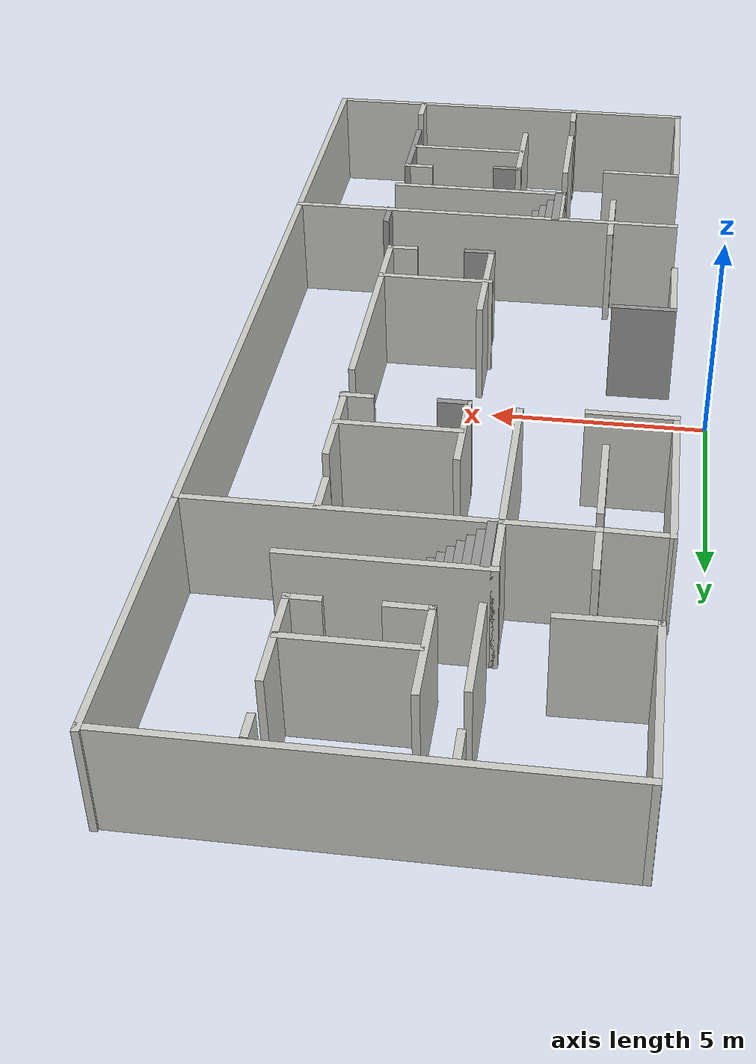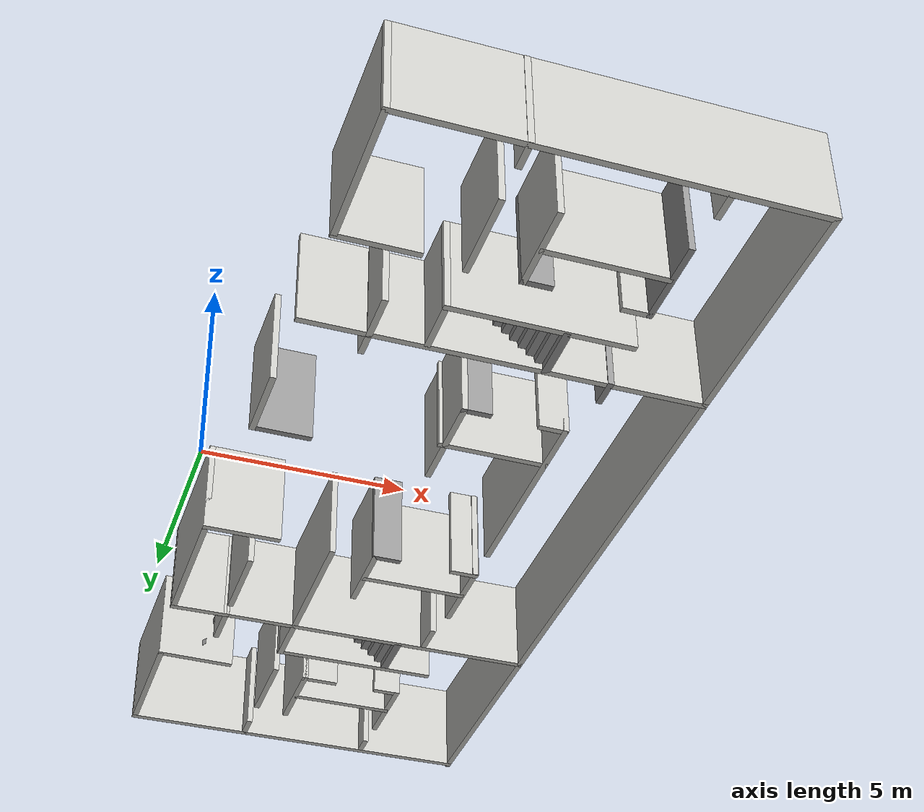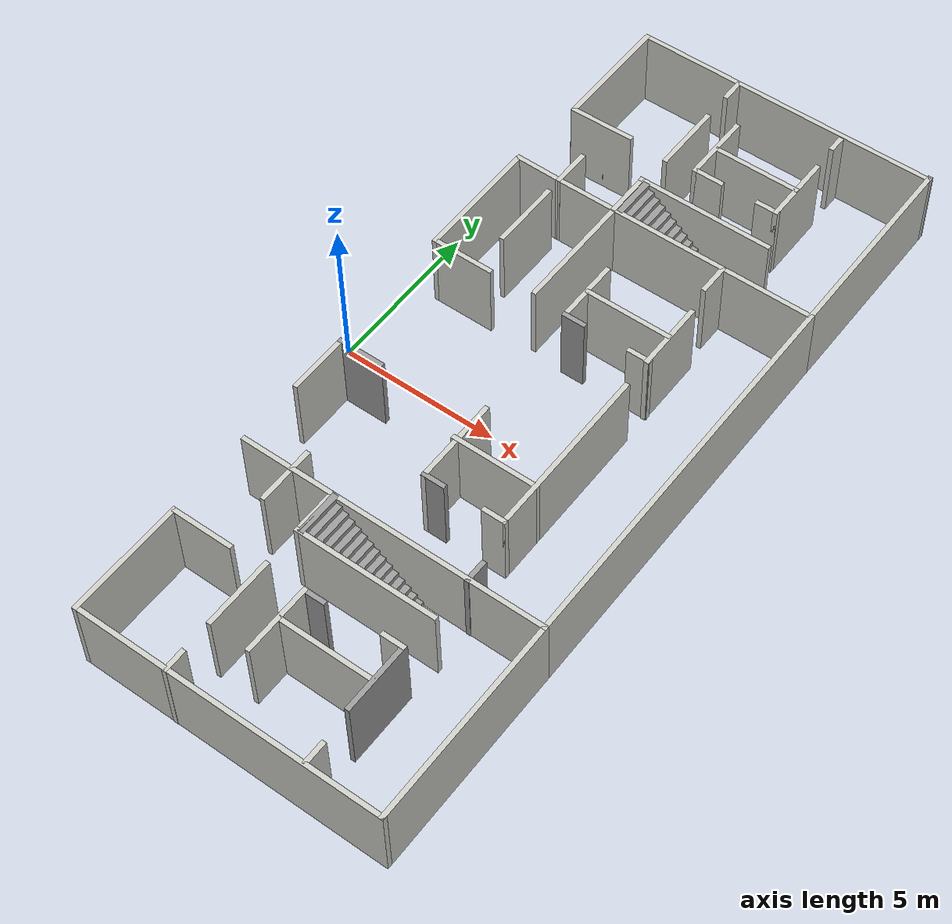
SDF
<?xml version='1.0'?>
<sdf version='1.6'>
  <model name='shelby_building_a'>
    <pose frame=''>5.3237 0.741996 0 0 -0 0</pose>
    <static>true</static>
    <link name='Stairs_0'>
      <visual name='Stairs_0_Visual_0'>
        <pose frame=''>1.71952 6.80943 0.083333 0 -0 -1.5708</pose>
        <geometry>
          <box>
            <size>1.3345 0.197035 0.166667</size>
          </box>
        </geometry>
        <material>
          <script>
            <uri>file://media/materials/scripts/gazebo.material</uri>
            <name>Gazebo/Grey</name>
          </script>
          <ambient>1 1 1 1</ambient>
        </material>
        <meta>
          <layer>0</layer>
        </meta>
      </visual>
      <collision name='Stairs_0_Collision_0'>
        <geometry>
          <box>
            <size>1.3345 0.197035 0.166667</size>
          </box>
        </geometry>
        <pose frame=''>1.71952 6.80943 0.083333 0 -0 -1.5708</pose>
      </collision>
      <visual name='Stairs_0_Visual_1'>
        <pose frame=''>1.52249 6.80943 0.25 0 -0 -1.5708</pose>
        <geometry>
          <box>
            <size>1.3345 0.197035 0.166667</size>
          </box>
        </geometry>
        <material>
          <script>
            <uri>file://media/materials/scripts/gazebo.material</uri>
            <name>Gazebo/Grey</name>
          </script>
          <ambient>1 1 1 1</ambient>
        </material>
        <meta>
          <layer>0</layer>
        </meta>
      </visual>
      <collision name='Stairs_0_Collision_1'>
        <geometry>
          <box>
            <size>1.3345 0.197035 0.166667</size>
          </box>
        </geometry>
        <pose frame=''>1.52249 6.80943 0.25 0 -0 -1.5708</pose>
      </collision>
      <visual name='Stairs_0_Visual_2'>
        <pose frame=''>1.32545 6.80943 0.416667 0 -0 -1.5708</pose>
        <geometry>
          <box>
            <size>1.3345 0.197035 0.166667</size>
          </box>
        </geometry>
        <material>
          <script>
            <uri>file://media/materials/scripts/gazebo.material</uri>
            <name>Gazebo/Grey</name>
          </script>
          <ambient>1 1 1 1</ambient>
        </material>
        <meta>
          <layer>0</layer>
        </meta>
      </visual>
      <collision name='Stairs_0_Collision_2'>
        <geometry>
          <box>
            <size>1.3345 0.197035 0.166667</size>
          </box>
        </geometry>
        <pose frame=''>1.32545 6.80943 0.416667 0 -0 -1.5708</pose>
      </collision>
      <visual name='Stairs_0_Visual_3'>
        <pose frame=''>1.12842 6.80943 0.583333 0 -0 -1.5708</pose>
        <geometry>
          <box>
            <size>1.3345 0.197035 0.166667</size>
          </box>
        </geometry>
        <material>
          <script>
            <uri>file://media/materials/scripts/gazebo.material</uri>
            <name>Gazebo/Grey</name>
          </script>
          <ambient>1 1 1 1</ambient>
        </material>
        <meta>
          <layer>0</layer>
        </meta>
      </visual>
      <collision name='Stairs_0_Collision_3'>
        <geometry>
          <box>
            <size>1.3345 0.197035 0.166667</size>
          </box>
        </geometry>
        <pose frame=''>1.12842 6.80943 0.583333 0 -0 -1.5708</pose>
      </collision>
      <visual name='Stairs_0_Visual_4'>
        <pose frame=''>0.931381 6.80943 0.75 0 -0 -1.5708</pose>
        <geometry>
          <box>
            <size>1.3345 0.197035 0.166667</size>
          </box>
        </geometry>
        <material>
          <script>
            <uri>file://media/materials/scripts/gazebo.material</uri>
            <name>Gazebo/Grey</name>
          </script>
          <ambient>1 1 1 1</ambient>
        </material>
        <meta>
          <layer>0</layer>
        </meta>
      </visual>
      <collision name='Stairs_0_Collision_4'>
        <geometry>
          <box>
            <size>1.3345 0.197035 0.166667</size>
          </box>
        </geometry>
        <pose frame=''>0.931381 6.80943 0.75 0 -0 -1.5708</pose>
      </collision>
      <visual name='Stairs_0_Visual_5'>
        <pose frame=''>0.734345 6.80943 0.916667 0 -0 -1.5708</pose>
        <geometry>
          <box>
            <size>1.3345 0.197035 0.166667</size>
          </box>
        </geometry>
        <material>
          <script>
            <uri>file://media/materials/scripts/gazebo.material</uri>
            <name>Gazebo/Grey</name>
          </script>
          <ambient>1 1 1 1</ambient>
        </material>
        <meta>
          <layer>0</layer>
        </meta>
      </visual>
      <collision name='Stairs_0_Collision_5'>
        <geometry>
          <box>
            <size>1.3345 0.197035 0.166667</size>
          </box>
        </geometry>
        <pose frame=''>0.734345 6.80943 0.916667 0 -0 -1.5708</pose>
      </collision>
      <visual name='Stairs_0_Visual_6'>
        <pose frame=''>0.53731 6.80943 1.08333 0 -0 -1.5708</pose>
        <geometry>
          <box>
            <size>1.3345 0.197035 0.166667</size>
          </box>
        </geometry>
        <material>
          <script>
            <uri>file://media/materials/scripts/gazebo.material</uri>
            <name>Gazebo/Grey</name>
          </script>
          <ambient>1 1 1 1</ambient>
        </material>
        <meta>
          <layer>0</layer>
        </meta>
      </visual>
      <collision name='Stairs_0_Collision_6'>
        <geometry>
          <box>
            <size>1.3345 0.197035 0.166667</size>
          </box>
        </geometry>
        <pose frame=''>0.53731 6.80943 1.08333 0 -0 -1.5708</pose>
      </collision>
      <visual name='Stairs_0_Visual_7'>
        <pose frame=''>0.340275 6.80943 1.25 0 -0 -1.5708</pose>
        <geometry>
          <box>
            <size>1.3345 0.197035 0.166667</size>
          </box>
        </geometry>
        <material>
          <script>
            <uri>file://media/materials/scripts/gazebo.material</uri>
            <name>Gazebo/Grey</name>
          </script>
          <ambient>1 1 1 1</ambient>
        </material>
        <meta>
          <layer>0</layer>
        </meta>
      </visual>
      <collision name='Stairs_0_Collision_7'>
        <geometry>
          <box>
            <size>1.3345 0.197035 0.166667</size>
          </box>
        </geometry>
        <pose frame=''>0.340275 6.80943 1.25 0 -0 -1.5708</pose>
      </collision>
      <visual name='Stairs_0_Visual_8'>
        <pose frame=''>0.143239 6.80943 1.41667 0 -0 -1.5708</pose>
        <geometry>
          <box>
            <size>1.3345 0.197035 0.166667</size>
          </box>
        </geometry>
        <material>
          <script>
            <uri>file://media/materials/scripts/gazebo.material</uri>
            <name>Gazebo/Grey</name>
          </script>
          <ambient>1 1 1 1</ambient>
        </material>
        <meta>
          <layer>0</layer>
        </meta>
      </visual>
      <collision name='Stairs_0_Collision_8'>
        <geometry>
          <box>
            <size>1.3345 0.197035 0.166667</size>
          </box>
        </geometry>
        <pose frame=''>0.143239 6.80943 1.41667 0 -0 -1.5708</pose>
      </collision>
      <visual name='Stairs_0_Visual_9'>
        <pose frame=''>-0.053796 6.80943 1.58333 0 -0 -1.5708</pose>
        <geometry>
          <box>
            <size>1.3345 0.197035 0.166667</size>
          </box>
        </geometry>
        <material>
          <script>
            <uri>file://media/materials/scripts/gazebo.material</uri>
            <name>Gazebo/Grey</name>
          </script>
          <ambient>1 1 1 1</ambient>
        </material>
        <meta>
          <layer>0</layer>
        </meta>
      </visual>
      <collision name='Stairs_0_Collision_9'>
        <geometry>
          <box>
            <size>1.3345 0.197035 0.166667</size>
          </box>
        </geometry>
        <pose frame=''>-0.053796 6.80943 1.58333 0 -0 -1.5708</pose>
      </collision>
      <visual name='Stairs_0_Visual_10'>
        <pose frame=''>-0.250831 6.80943 1.75 0 -0 -1.5708</pose>
        <geometry>
          <box>
            <size>1.3345 0.197035 0.166667</size>
          </box>
        </geometry>
        <material>
          <script>
            <uri>file://media/materials/scripts/gazebo.material</uri>
            <name>Gazebo/Grey</name>
          </script>
          <ambient>1 1 1 1</ambient>
        </material>
        <meta>
          <layer>0</layer>
        </meta>
      </visual>
      <collision name='Stairs_0_Collision_10'>
        <geometry>
          <box>
            <size>1.3345 0.197035 0.166667</size>
          </box>
        </geometry>
        <pose frame=''>-0.250831 6.80943 1.75 0 -0 -1.5708</pose>
      </collision>
      <visual name='Stairs_0_Visual_11'>
        <pose frame=''>-0.447867 6.80943 1.91667 0 -0 -1.5708</pose>
        <geometry>
          <box>
            <size>1.3345 0.197035 0.166667</size>
          </box>
        </geometry>
        <material>
          <script>
            <uri>file://media/materials/scripts/gazebo.material</uri>
            <name>Gazebo/Grey</name>
          </script>
          <ambient>1 1 1 1</ambient>
        </material>
        <meta>
          <layer>0</layer>
        </meta>
      </visual>
      <collision name='Stairs_0_Collision_11'>
        <geometry>
          <box>
            <size>1.3345 0.197035 0.166667</size>
          </box>
        </geometry>
        <pose frame=''>-0.447867 6.80943 1.91667 0 -0 -1.5708</pose>
      </collision>
      <visual name='Stairs_0_Visual_12'>
        <pose frame=''>-0.644902 6.80943 2.08333 0 -0 -1.5708</pose>
        <geometry>
          <box>
            <size>1.3345 0.197035 0.166667</size>
          </box>
        </geometry>
        <material>
          <script>
            <uri>file://media/materials/scripts/gazebo.material</uri>
            <name>Gazebo/Grey</name>
          </script>
          <ambient>1 1 1 1</ambient>
        </material>
        <meta>
          <layer>0</layer>
        </meta>
      </visual>
      <collision name='Stairs_0_Collision_12'>
        <geometry>
          <box>
            <size>1.3345 0.197035 0.166667</size>
          </box>
        </geometry>
        <pose frame=''>-0.644902 6.80943 2.08333 0 -0 -1.5708</pose>
      </collision>
      <visual name='Stairs_0_Visual_13'>
        <pose frame=''>-0.841938 6.80943 2.25 0 -0 -1.5708</pose>
        <geometry>
          <box>
            <size>1.3345 0.197035 0.166667</size>
          </box>
        </geometry>
        <material>
          <script>
            <uri>file://media/materials/scripts/gazebo.material</uri>
            <name>Gazebo/Grey</name>
          </script>
          <ambient>1 1 1 1</ambient>
        </material>
        <meta>
          <layer>0</layer>
        </meta>
      </visual>
      <collision name='Stairs_0_Collision_13'>
        <geometry>
          <box>
            <size>1.3345 0.197035 0.166667</size>
          </box>
        </geometry>
        <pose frame=''>-0.841938 6.80943 2.25 0 -0 -1.5708</pose>
      </collision>
      <visual name='Stairs_0_Visual_14'>
        <pose frame=''>-1.03897 6.80943 2.41667 0 -0 -1.5708</pose>
        <geometry>
          <box>
            <size>1.3345 0.197035 0.166667</size>
          </box>
        </geometry>
        <material>
          <script>
            <uri>file://media/materials/scripts/gazebo.material</uri>
            <name>Gazebo/Grey</name>
          </script>
          <ambient>1 1 1 1</ambient>
        </material>
        <meta>
          <layer>0</layer>
        </meta>
      </visual>
      <collision name='Stairs_0_Collision_14'>
        <geometry>
          <box>
            <size>1.3345 0.197035 0.166667</size>
          </box>
        </geometry>
        <pose frame=''>-1.03897 6.80943 2.41667 0 -0 -1.5708</pose>
      </collision>
    </link>
    <link name='Stairs_1'>
      <visual name='Stairs_1_Visual_0'>
        <pose frame=''>1.3518 -6.65038 0.083333 0 -0 -1.5708</pose>
        <geometry>
          <box>
            <size>1.42081 0.192156 0.166667</size>
          </box>
        </geometry>
        <material>
          <script>
            <uri>file://media/materials/scripts/gazebo.material</uri>
            <name>Gazebo/Grey</name>
          </script>
          <ambient>1 1 1 1</ambient>
        </material>
        <meta>
          <layer>0</layer>
        </meta>
      </visual>
      <collision name='Stairs_1_Collision_0'>
        <geometry>
          <box>
            <size>1.42081 0.192156 0.166667</size>
          </box>
        </geometry>
        <pose frame=''>1.3518 -6.65038 0.083333 0 -0 -1.5708</pose>
      </collision>
      <visual name='Stairs_1_Visual_1'>
        <pose frame=''>1.15964 -6.65038 0.25 0 -0 -1.5708</pose>
        <geometry>
          <box>
            <size>1.42081 0.192156 0.166667</size>
          </box>
        </geometry>
        <material>
          <script>
            <uri>file://media/materials/scripts/gazebo.material</uri>
            <name>Gazebo/Grey</name>
          </script>
          <ambient>1 1 1 1</ambient>
        </material>
        <meta>
          <layer>0</layer>
        </meta>
      </visual>
      <collision name='Stairs_1_Collision_1'>
        <geometry>
          <box>
            <size>1.42081 0.192156 0.166667</size>
          </box>
        </geometry>
        <pose frame=''>1.15964 -6.65038 0.25 0 -0 -1.5708</pose>
      </collision>
      <visual name='Stairs_1_Visual_2'>
        <pose frame=''>0.967485 -6.65038 0.416667 0 -0 -1.5708</pose>
        <geometry>
          <box>
            <size>1.42081 0.192156 0.166667</size>
          </box>
        </geometry>
        <material>
          <script>
            <uri>file://media/materials/scripts/gazebo.material</uri>
            <name>Gazebo/Grey</name>
          </script>
          <ambient>1 1 1 1</ambient>
        </material>
        <meta>
          <layer>0</layer>
        </meta>
      </visual>
      <collision name='Stairs_1_Collision_2'>
        <geometry>
          <box>
            <size>1.42081 0.192156 0.166667</size>
          </box>
        </geometry>
        <pose frame=''>0.967485 -6.65038 0.416667 0 -0 -1.5708</pose>
      </collision>
      <visual name='Stairs_1_Visual_3'>
        <pose frame=''>0.775329 -6.65038 0.583333 0 -0 -1.5708</pose>
        <geometry>
          <box>
            <size>1.42081 0.192156 0.166667</size>
          </box>
        </geometry>
        <material>
          <script>
            <uri>file://media/materials/scripts/gazebo.material</uri>
            <name>Gazebo/Grey</name>
          </script>
          <ambient>1 1 1 1</ambient>
        </material>
        <meta>
          <layer>0</layer>
        </meta>
      </visual>
      <collision name='Stairs_1_Collision_3'>
        <geometry>
          <box>
            <size>1.42081 0.192156 0.166667</size>
          </box>
        </geometry>
        <pose frame=''>0.775329 -6.65038 0.583333 0 -0 -1.5708</pose>
      </collision>
      <visual name='Stairs_1_Visual_4'>
        <pose frame=''>0.583173 -6.65038 0.75 0 -0 -1.5708</pose>
        <geometry>
          <box>
            <size>1.42081 0.192156 0.166667</size>
          </box>
        </geometry>
        <material>
          <script>
            <uri>file://media/materials/scripts/gazebo.material</uri>
            <name>Gazebo/Grey</name>
          </script>
          <ambient>1 1 1 1</ambient>
        </material>
        <meta>
          <layer>0</layer>
        </meta>
      </visual>
      <collision name='Stairs_1_Collision_4'>
        <geometry>
          <box>
            <size>1.42081 0.192156 0.166667</size>
          </box>
        </geometry>
        <pose frame=''>0.583173 -6.65038 0.75 0 -0 -1.5708</pose>
      </collision>
      <visual name='Stairs_1_Visual_5'>
        <pose frame=''>0.391017 -6.65038 0.916667 0 -0 -1.5708</pose>
        <geometry>
          <box>
            <size>1.42081 0.192156 0.166667</size>
          </box>
        </geometry>
        <material>
          <script>
            <uri>file://media/materials/scripts/gazebo.material</uri>
            <name>Gazebo/Grey</name>
          </script>
          <ambient>1 1 1 1</ambient>
        </material>
        <meta>
          <layer>0</layer>
        </meta>
      </visual>
      <collision name='Stairs_1_Collision_5'>
        <geometry>
          <box>
            <size>1.42081 0.192156 0.166667</size>
          </box>
        </geometry>
        <pose frame=''>0.391017 -6.65038 0.916667 0 -0 -1.5708</pose>
      </collision>
      <visual name='Stairs_1_Visual_6'>
        <pose frame=''>0.198861 -6.65038 1.08333 0 -0 -1.5708</pose>
        <geometry>
          <box>
            <size>1.42081 0.192156 0.166667</size>
          </box>
        </geometry>
        <material>
          <script>
            <uri>file://media/materials/scripts/gazebo.material</uri>
            <name>Gazebo/Grey</name>
          </script>
          <ambient>1 1 1 1</ambient>
        </material>
        <meta>
          <layer>0</layer>
        </meta>
      </visual>
      <collision name='Stairs_1_Collision_6'>
        <geometry>
          <box>
            <size>1.42081 0.192156 0.166667</size>
          </box>
        </geometry>
        <pose frame=''>0.198861 -6.65038 1.08333 0 -0 -1.5708</pose>
      </collision>
      <visual name='Stairs_1_Visual_7'>
        <pose frame=''>0.006705 -6.65038 1.25 0 -0 -1.5708</pose>
        <geometry>
          <box>
            <size>1.42081 0.192156 0.166667</size>
          </box>
        </geometry>
        <material>
          <script>
            <uri>file://media/materials/scripts/gazebo.material</uri>
            <name>Gazebo/Grey</name>
          </script>
          <ambient>1 1 1 1</ambient>
        </material>
        <meta>
          <layer>0</layer>
        </meta>
      </visual>
      <collision name='Stairs_1_Collision_7'>
        <geometry>
          <box>
            <size>1.42081 0.192156 0.166667</size>
          </box>
        </geometry>
        <pose frame=''>0.006705 -6.65038 1.25 0 -0 -1.5708</pose>
      </collision>
      <visual name='Stairs_1_Visual_8'>
        <pose frame=''>-0.185451 -6.65038 1.41667 0 -0 -1.5708</pose>
        <geometry>
          <box>
            <size>1.42081 0.192156 0.166667</size>
          </box>
        </geometry>
        <material>
          <script>
            <uri>file://media/materials/scripts/gazebo.material</uri>
            <name>Gazebo/Grey</name>
          </script>
          <ambient>1 1 1 1</ambient>
        </material>
        <meta>
          <layer>0</layer>
        </meta>
      </visual>
      <collision name='Stairs_1_Collision_8'>
        <geometry>
          <box>
            <size>1.42081 0.192156 0.166667</size>
          </box>
        </geometry>
        <pose frame=''>-0.185451 -6.65038 1.41667 0 -0 -1.5708</pose>
      </collision>
      <visual name='Stairs_1_Visual_9'>
        <pose frame=''>-0.377606 -6.65038 1.58333 0 -0 -1.5708</pose>
        <geometry>
          <box>
            <size>1.42081 0.192156 0.166667</size>
          </box>
        </geometry>
        <material>
          <script>
            <uri>file://media/materials/scripts/gazebo.material</uri>
            <name>Gazebo/Grey</name>
          </script>
          <ambient>1 1 1 1</ambient>
        </material>
        <meta>
          <layer>0</layer>
        </meta>
      </visual>
      <collision name='Stairs_1_Collision_9'>
        <geometry>
          <box>
            <size>1.42081 0.192156 0.166667</size>
          </box>
        </geometry>
        <pose frame=''>-0.377606 -6.65038 1.58333 0 -0 -1.5708</pose>
      </collision>
      <visual name='Stairs_1_Visual_10'>
        <pose frame=''>-0.569762 -6.65038 1.75 0 -0 -1.5708</pose>
        <geometry>
          <box>
            <size>1.42081 0.192156 0.166667</size>
          </box>
        </geometry>
        <material>
          <script>
            <uri>file://media/materials/scripts/gazebo.material</uri>
            <name>Gazebo/Grey</name>
          </script>
          <ambient>1 1 1 1</ambient>
        </material>
        <meta>
          <layer>0</layer>
        </meta>
      </visual>
      <collision name='Stairs_1_Collision_10'>
        <geometry>
          <box>
            <size>1.42081 0.192156 0.166667</size>
          </box>
        </geometry>
        <pose frame=''>-0.569762 -6.65038 1.75 0 -0 -1.5708</pose>
      </collision>
      <visual name='Stairs_1_Visual_11'>
        <pose frame=''>-0.761919 -6.65038 1.91667 0 -0 -1.5708</pose>
        <geometry>
          <box>
            <size>1.42081 0.192156 0.166667</size>
          </box>
        </geometry>
        <material>
          <script>
            <uri>file://media/materials/scripts/gazebo.material</uri>
            <name>Gazebo/Grey</name>
          </script>
          <ambient>1 1 1 1</ambient>
        </material>
        <meta>
          <layer>0</layer>
        </meta>
      </visual>
      <collision name='Stairs_1_Collision_11'>
        <geometry>
          <box>
            <size>1.42081 0.192156 0.166667</size>
          </box>
        </geometry>
        <pose frame=''>-0.761919 -6.65038 1.91667 0 -0 -1.5708</pose>
      </collision>
      <visual name='Stairs_1_Visual_12'>
        <pose frame=''>-0.954074 -6.65038 2.08333 0 -0 -1.5708</pose>
        <geometry>
          <box>
            <size>1.42081 0.192156 0.166667</size>
          </box>
        </geometry>
        <material>
          <script>
            <uri>file://media/materials/scripts/gazebo.material</uri>
            <name>Gazebo/Grey</name>
          </script>
          <ambient>1 1 1 1</ambient>
        </material>
        <meta>
          <layer>0</layer>
        </meta>
      </visual>
      <collision name='Stairs_1_Collision_12'>
        <geometry>
          <box>
            <size>1.42081 0.192156 0.166667</size>
          </box>
        </geometry>
        <pose frame=''>-0.954074 -6.65038 2.08333 0 -0 -1.5708</pose>
      </collision>
      <visual name='Stairs_1_Visual_13'>
        <pose frame=''>-1.14623 -6.65038 2.25 0 -0 -1.5708</pose>
        <geometry>
          <box>
            <size>1.42081 0.192156 0.166667</size>
          </box>
        </geometry>
        <material>
          <script>
            <uri>file://media/materials/scripts/gazebo.material</uri>
            <name>Gazebo/Grey</name>
          </script>
          <ambient>1 1 1 1</ambient>
        </material>
        <meta>
          <layer>0</layer>
        </meta>
      </visual>
      <collision name='Stairs_1_Collision_13'>
        <geometry>
          <box>
            <size>1.42081 0.192156 0.166667</size>
          </box>
        </geometry>
        <pose frame=''>-1.14623 -6.65038 2.25 0 -0 -1.5708</pose>
      </collision>
      <visual name='Stairs_1_Visual_14'>
        <pose frame=''>-1.33839 -6.65038 2.41667 0 -0 -1.5708</pose>
        <geometry>
          <box>
            <size>1.42081 0.192156 0.166667</size>
          </box>
        </geometry>
        <material>
          <script>
            <uri>file://media/materials/scripts/gazebo.material</uri>
            <name>Gazebo/Grey</name>
          </script>
          <ambient>1 1 1 1</ambient>
        </material>
        <meta>
          <layer>0</layer>
        </meta>
      </visual>
      <collision name='Stairs_1_Collision_14'>
        <geometry>
          <box>
            <size>1.42081 0.192156 0.166667</size>
          </box>
        </geometry>
        <pose frame=''>-1.33839 -6.65038 2.41667 0 -0 -1.5708</pose>
      </collision>
    </link>
    <link name='Wall_0'>
      <collision name='Wall_0_Collision'>
        <geometry>
          <box>
            <size>1.25 0.15 2.5</size>
          </box>
        </geometry>
        <pose frame=''>0 0 1.25 0 -0 0</pose>
      </collision>
      <visual name='Wall_0_Visual'>
        <pose frame=''>0 0 1.25 0 -0 0</pose>
        <geometry>
          <box>
            <size>1.25 0.15 2.5</size>
          </box>
        </geometry>
        <material>
          <script>
            <uri>file://media/materials/scripts/gazebo.material</uri>
            <name>Gazebo/CeilingTiled</name>
          </script>
          <ambient>1 1 1 1</ambient>
        </material>
        <meta>
          <layer>0</layer>
        </meta>
      </visual>
      <pose frame=''>-3.1013 6.6757 0 0 -0 1.5708</pose>
    </link>
    <link name='Wall_100'>
      <collision name='Wall_100_Collision'>
        <geometry>
          <box>
            <size>0.75 0.15 2.5</size>
          </box>
        </geometry>
        <pose frame=''>0 0 1.25 0 -0 0</pose>
      </collision>
      <visual name='Wall_100_Visual'>
        <pose frame=''>0 0 1.25 0 -0 0</pose>
        <geometry>
          <box>
            <size>0.75 0.15 2.5</size>
          </box>
        </geometry>
        <material>
          <script>
            <uri>file://media/materials/scripts/gazebo.material</uri>
            <name>Gazebo/CeilingTiled</name>
          </script>
          <ambient>1 1 1 1</ambient>
        </material>
        <meta>
          <layer>0</layer>
        </meta>
      </visual>
      <pose frame=''>2.51244 -8.45493 0 0 -0 3.14159</pose>
    </link>
    <link name='Wall_102'>
      <collision name='Wall_102_Collision'>
        <geometry>
          <box>
            <size>0.75 0.15 2.5</size>
          </box>
        </geometry>
        <pose frame=''>0 0 1.25 0 -0 0</pose>
      </collision>
      <visual name='Wall_102_Visual'>
        <pose frame=''>0 0 1.25 0 -0 0</pose>
        <geometry>
          <box>
            <size>0.75 0.15 2.5</size>
          </box>
        </geometry>
        <material>
          <script>
            <uri>file://media/materials/scripts/gazebo.material</uri>
            <name>Gazebo/CeilingTiled</name>
          </script>
          <ambient>1 1 1 1</ambient>
        </material>
        <meta>
          <layer>0</layer>
        </meta>
      </visual>
      <pose frame=''>2.91712 -11.9645 0 0 -0 1.5708</pose>
    </link>
    <link name='Wall_11'>
      <collision name='Wall_11_Collision'>
        <geometry>
          <box>
            <size>2.25 0.15 2.5</size>
          </box>
        </geometry>
        <pose frame=''>0 0 1.25 0 -0 0</pose>
      </collision>
      <visual name='Wall_11_Visual'>
        <pose frame=''>0 0 1.25 0 -0 0</pose>
        <geometry>
          <box>
            <size>2.25 0.15 2.5</size>
          </box>
        </geometry>
        <material>
          <script>
            <uri>file://media/materials/scripts/gazebo.material</uri>
            <name>Gazebo/CeilingTiled</name>
          </script>
          <ambient>1 1 1 1</ambient>
        </material>
        <meta>
          <layer>0</layer>
        </meta>
      </visual>
      <pose frame=''>-3.09191 4.52799 0 0 -0 -1.5708</pose>
    </link>
    <link name='Wall_17'>
      <collision name='Wall_17_Collision'>
        <geometry>
          <box>
            <size>2.25 0.15 2.5</size>
          </box>
        </geometry>
        <pose frame=''>0 0 1.25 0 -0 0</pose>
      </collision>
      <visual name='Wall_17_Visual'>
        <pose frame=''>0 0 1.25 0 -0 0</pose>
        <geometry>
          <box>
            <size>2.25 0.15 2.5</size>
          </box>
        </geometry>
        <material>
          <script>
            <uri>file://media/materials/scripts/gazebo.material</uri>
            <name>Gazebo/CeilingTiled</name>
          </script>
          <ambient>1 1 1 1</ambient>
        </material>
        <meta>
          <layer>0</layer>
        </meta>
      </visual>
      <pose frame=''>2.47616 9.76328 0 0 -0 -1.5708</pose>
    </link>
    <link name='Wall_18'>
      <collision name='Wall_18_Collision'>
        <geometry>
          <box>
            <size>0.75 0.15 2.5</size>
          </box>
        </geometry>
        <pose frame=''>0 0 1.25 0 -0 0</pose>
      </collision>
      <visual name='Wall_18_Visual'>
        <pose frame=''>0 0 1.25 0 -0 0</pose>
        <geometry>
          <box>
            <size>0.75 0.15 2.5</size>
          </box>
        </geometry>
        <material>
          <script>
            <uri>file://media/materials/scripts/gazebo.material</uri>
            <name>Gazebo/CeilingTiled</name>
          </script>
          <ambient>1 1 1 1</ambient>
        </material>
        <meta>
          <layer>0</layer>
        </meta>
      </visual>
      <pose frame=''>2.17616 8.71328 0 0 -0 3.14159</pose>
    </link>
    <link name='Wall_2'>
      <collision name='Wall_2_Collision'>
        <geometry>
          <box>
            <size>1.57014 0.15 2.5</size>
          </box>
        </geometry>
        <pose frame=''>0 0 1.25 0 -0 0</pose>
      </collision>
      <visual name='Wall_2_Visual'>
        <pose frame=''>0 0 1.25 0 -0 0</pose>
        <geometry>
          <box>
            <size>1.57014 0.15 2.5</size>
          </box>
        </geometry>
        <material>
          <script>
            <uri>file://media/materials/scripts/gazebo.material</uri>
            <name>Gazebo/CeilingTiled</name>
          </script>
          <ambient>1 1 1 1</ambient>
        </material>
        <meta>
          <layer>0</layer>
        </meta>
      </visual>
      <pose frame=''>-3.8113 6.1357 0 0 -0 -0.014084</pose>
    </link>
    <link name='Wall_20'>
      <collision name='Wall_20_Collision'>
        <geometry>
          <box>
            <size>2.75 0.15 2.5</size>
          </box>
        </geometry>
        <pose frame=''>0 0 1.25 0 -0 0</pose>
      </collision>
      <visual name='Wall_20_Visual'>
        <pose frame=''>0 0 1.25 0 -0 0</pose>
        <geometry>
          <box>
            <size>2.75 0.15 2.5</size>
          </box>
        </geometry>
        <material>
          <script>
            <uri>file://media/materials/scripts/gazebo.material</uri>
            <name>Gazebo/CeilingTiled</name>
          </script>
          <ambient>1 1 1 1</ambient>
        </material>
        <meta>
          <layer>0</layer>
        </meta>
      </visual>
      <pose frame=''>1.15007 9.73502 0 0 -0 0</pose>
    </link>
    <link name='Wall_22'>
      <collision name='Wall_22_Collision'>
        <geometry>
          <box>
            <size>0.75 0.15 2.5</size>
          </box>
        </geometry>
        <pose frame=''>0 0 1.25 0 -0 0</pose>
      </collision>
      <visual name='Wall_22_Visual'>
        <pose frame=''>0 0 1.25 0 -0 0</pose>
        <geometry>
          <box>
            <size>0.75 0.15 2.5</size>
          </box>
        </geometry>
        <material>
          <script>
            <uri>file://media/materials/scripts/gazebo.material</uri>
            <name>Gazebo/CeilingTiled</name>
          </script>
          <ambient>1 1 1 1</ambient>
        </material>
        <meta>
          <layer>0</layer>
        </meta>
      </visual>
      <pose frame=''>-1.10645 11.922 0 0 -0 -1.5708</pose>
    </link>
    <link name='Wall_24'>
      <collision name='Wall_24_Collision'>
        <geometry>
          <box>
            <size>0.55 0.15 2.5</size>
          </box>
        </geometry>
        <pose frame=''>0 0 1.25 0 -0 0</pose>
      </collision>
      <visual name='Wall_24_Visual'>
        <pose frame=''>0 0 1.25 0 -0 0</pose>
        <geometry>
          <box>
            <size>0.55 0.15 2.5</size>
          </box>
        </geometry>
        <material>
          <script>
            <uri>file://media/materials/scripts/gazebo.material</uri>
            <name>Gazebo/CeilingTiled</name>
          </script>
          <ambient>1 1 1 1</ambient>
        </material>
        <meta>
          <layer>0</layer>
        </meta>
      </visual>
      <pose frame=''>2.44137 11.9046 0 0 -0 -1.5708</pose>
    </link>
    <link name='Wall_27'>
      <collision name='Wall_27_Collision'>
        <geometry>
          <box>
            <size>4.36087 0.15 2.5</size>
          </box>
        </geometry>
        <pose frame=''>0 0 1.25 0 -0 0</pose>
      </collision>
      <visual name='Wall_27_Visual'>
        <pose frame=''>0 0 1.25 0 -0 0</pose>
        <geometry>
          <box>
            <size>4.36087 0.15 2.5</size>
          </box>
        </geometry>
        <material>
          <script>
            <uri>file://media/materials/scripts/gazebo.material</uri>
            <name>Gazebo/CeilingTiled</name>
          </script>
          <ambient>1 1 1 1</ambient>
        </material>
        <meta>
          <layer>0</layer>
        </meta>
      </visual>
      <pose frame=''>0.859853 7.50893 0 0 -0 0</pose>
    </link>
    <link name='Wall_29'>
      <collision name='Wall_29_Collision'>
        <geometry>
          <box>
            <size>4 0.15 2.5</size>
          </box>
        </geometry>
        <pose frame=''>0 0 1.25 0 -0 0</pose>
      </collision>
      <visual name='Wall_29_Visual'>
        <pose frame=''>0 0 1.25 0 -0 0</pose>
        <geometry>
          <box>
            <size>4 0.15 2.5</size>
          </box>
        </geometry>
        <material>
          <script>
            <uri>file://media/materials/scripts/gazebo.material</uri>
            <name>Gazebo/CeilingTiled</name>
          </script>
          <ambient>1 1 1 1</ambient>
        </material>
        <meta>
          <layer>0</layer>
        </meta>
      </visual>
      <pose frame=''>-4.5213 4.22071 0 0 -0 -1.5708</pose>
    </link>
    <link name='Wall_3'>
      <collision name='Wall_3_Collision'>
        <geometry>
          <box>
            <size>8.5 0.15 2.5</size>
          </box>
        </geometry>
        <pose frame=''>0 0 1.25 0 -0 0</pose>
      </collision>
      <visual name='Wall_3_Visual'>
        <pose frame=''>0 0 1.25 0 -0 0</pose>
        <geometry>
          <box>
            <size>8.5 0.15 2.5</size>
          </box>
        </geometry>
        <material>
          <script>
            <uri>file://media/materials/scripts/gazebo.material</uri>
            <name>Gazebo/CeilingTiled</name>
          </script>
          <ambient>1 1 1 1</ambient>
        </material>
        <meta>
          <layer>0</layer>
        </meta>
      </visual>
      <pose frame=''>1.0737 6.12571 0 0 -0 0</pose>
    </link>
    <link name='Wall_30'>
      <collision name='Wall_30_Collision'>
        <geometry>
          <box>
            <size>2 0.15 2.5</size>
          </box>
        </geometry>
        <pose frame=''>0 0 1.25 0 -0 0</pose>
      </collision>
      <visual name='Wall_30_Visual'>
        <pose frame=''>0 0 1.25 0 -0 0</pose>
        <geometry>
          <box>
            <size>2 0.15 2.5</size>
          </box>
        </geometry>
        <material>
          <script>
            <uri>file://media/materials/scripts/gazebo.material</uri>
            <name>Gazebo/CeilingTiled</name>
          </script>
          <ambient>1 1 1 1</ambient>
        </material>
        <meta>
          <layer>0</layer>
        </meta>
      </visual>
      <pose frame=''>-3.5963 2.29571 0 0 -0 0</pose>
    </link>
    <link name='Wall_32'>
      <collision name='Wall_32_Collision'>
        <geometry>
          <box>
            <size>3.75 0.15 2.5</size>
          </box>
        </geometry>
        <pose frame=''>0 0 1.25 0 -0 0</pose>
      </collision>
      <visual name='Wall_32_Visual'>
        <pose frame=''>0 0 1.25 0 -0 0</pose>
        <geometry>
          <box>
            <size>3.75 0.15 2.5</size>
          </box>
        </geometry>
        <material>
          <script>
            <uri>file://media/materials/scripts/gazebo.material</uri>
            <name>Gazebo/CeilingTiled</name>
          </script>
          <ambient>1 1 1 1</ambient>
        </material>
        <meta>
          <layer>0</layer>
        </meta>
      </visual>
      <pose frame=''>-1.21879 4.22277 0 0 -0 -1.5708</pose>
    </link>
    <link name='Wall_34'>
      <collision name='Wall_34_Collision'>
        <geometry>
          <box>
            <size>2.06939 0.15 2.5</size>
          </box>
        </geometry>
        <pose frame=''>0 0 1.25 0 -0 0</pose>
      </collision>
      <visual name='Wall_34_Visual'>
        <pose frame=''>0 0 1.25 0 -0 0</pose>
        <geometry>
          <box>
            <size>2.06939 0.15 2.5</size>
          </box>
        </geometry>
        <material>
          <script>
            <uri>file://media/materials/scripts/gazebo.material</uri>
            <name>Gazebo/CeilingTiled</name>
          </script>
          <ambient>1 1 1 1</ambient>
        </material>
        <meta>
          <layer>0</layer>
        </meta>
      </visual>
      <pose frame=''>-0.108517 3.25844 0 0 -0 1.5708</pose>
    </link>
    <link name='Wall_36'>
      <collision name='Wall_36_Collision'>
        <geometry>
          <box>
            <size>2.75 0.15 2.5</size>
          </box>
        </geometry>
        <pose frame=''>0 0 1.25 0 -0 0</pose>
      </collision>
      <visual name='Wall_36_Visual'>
        <pose frame=''>0 0 1.25 0 -0 0</pose>
        <geometry>
          <box>
            <size>2.75 0.15 2.5</size>
          </box>
        </geometry>
        <material>
          <script>
            <uri>file://media/materials/scripts/gazebo.material</uri>
            <name>Gazebo/CeilingTiled</name>
          </script>
          <ambient>1 1 1 1</ambient>
        </material>
        <meta>
          <layer>0</layer>
        </meta>
      </visual>
      <pose frame=''>1.23774 3.29336 0 0 -0 0</pose>
    </link>
    <link name='Wall_38'>
      <collision name='Wall_38_Collision'>
        <geometry>
          <box>
            <size>2.23131 0.15 2.5</size>
          </box>
        </geometry>
        <pose frame=''>0 0 1.25 0 -0 0</pose>
      </collision>
      <visual name='Wall_38_Visual'>
        <pose frame=''>0 0 1.25 0 -0 0</pose>
        <geometry>
          <box>
            <size>2.23131 0.15 2.5</size>
          </box>
        </geometry>
        <material>
          <script>
            <uri>file://media/materials/scripts/gazebo.material</uri>
            <name>Gazebo/CeilingTiled</name>
          </script>
          <ambient>1 1 1 1</ambient>
        </material>
        <meta>
          <layer>0</layer>
        </meta>
      </visual>
      <pose frame=''>2.57463 3.31672 0 0 -0 -1.5708</pose>
    </link>
    <link name='Wall_39'>
      <collision name='Wall_39_Collision'>
        <geometry>
          <box>
            <size>0.75 0.15 2.5</size>
          </box>
        </geometry>
        <pose frame=''>0 0 1.25 0 -0 0</pose>
      </collision>
      <visual name='Wall_39_Visual'>
        <pose frame=''>0 0 1.25 0 -0 0</pose>
        <geometry>
          <box>
            <size>0.75 0.15 2.5</size>
          </box>
        </geometry>
        <material>
          <script>
            <uri>file://media/materials/scripts/gazebo.material</uri>
            <name>Gazebo/CeilingTiled</name>
          </script>
          <ambient>1 1 1 1</ambient>
        </material>
        <meta>
          <layer>0</layer>
        </meta>
      </visual>
      <pose frame=''>2.29776 2.29919 0 0 -0 3.14159</pose>
    </link>
    <link name='Wall_4'>
      <collision name='Wall_4_Collision'>
        <geometry>
          <box>
            <size>6.3564 0.15 2.5</size>
          </box>
        </geometry>
        <pose frame=''>0 0 1.25 0 -0 0</pose>
      </collision>
      <visual name='Wall_4_Visual'>
        <pose frame=''>0 0 1.25 0 -0 0</pose>
        <geometry>
          <box>
            <size>6.3564 0.15 2.5</size>
          </box>
        </geometry>
        <material>
          <script>
            <uri>file://media/materials/scripts/gazebo.material</uri>
            <name>Gazebo/CeilingTiled</name>
          </script>
          <ambient>1 1 1 1</ambient>
        </material>
        <meta>
          <layer>0</layer>
        </meta>
      </visual>
      <pose frame=''>5.2487 9.22891 0 0 -0 1.5708</pose>
    </link>
    <link name='Wall_41'>
      <collision name='Wall_41_Collision'>
        <geometry>
          <box>
            <size>0.75 0.15 2.5</size>
          </box>
        </geometry>
        <pose frame=''>0 0 1.25 0 -0 0</pose>
      </collision>
      <visual name='Wall_41_Visual'>
        <pose frame=''>0 0 1.25 0 -0 0</pose>
        <geometry>
          <box>
            <size>0.75 0.15 2.5</size>
          </box>
        </geometry>
        <material>
          <script>
            <uri>file://media/materials/scripts/gazebo.material</uri>
            <name>Gazebo/Grey</name>
          </script>
          <ambient>1 1 1 1</ambient>
        </material>
        <meta>
          <layer>0</layer>
        </meta>
      </visual>
      <pose frame=''>0.191483 2.27562 0 0 -0 0</pose>
    </link>
    <link name='Wall_44'>
      <collision name='Wall_44_Collision'>
        <geometry>
          <box>
            <size>1 0.15 2.5</size>
          </box>
        </geometry>
        <pose frame=''>0 0 1.25 0 -0 0</pose>
      </collision>
      <visual name='Wall_44_Visual'>
        <pose frame=''>0 0 1.25 0 -0 0</pose>
        <geometry>
          <box>
            <size>1 0.15 2.5</size>
          </box>
        </geometry>
        <material>
          <script>
            <uri>file://media/materials/scripts/gazebo.material</uri>
            <name>Gazebo/CeilingTiled</name>
          </script>
          <ambient>1 1 1 1</ambient>
        </material>
        <meta>
          <layer>0</layer>
        </meta>
      </visual>
      <pose frame=''>2.41272 5.66716 0 0 -0 -1.5708</pose>
    </link>
    <link name='Wall_46'>
      <collision name='Wall_46_Collision'>
        <geometry>
          <box>
            <size>12.25 0.15 2.5</size>
          </box>
        </geometry>
        <pose frame=''>0 0 1.25 0 -0 0</pose>
      </collision>
      <visual name='Wall_46_Visual'>
        <pose frame=''>0 0 1.25 0 -0 0</pose>
        <geometry>
          <box>
            <size>12.25 0.15 2.5</size>
          </box>
        </geometry>
        <material>
          <script>
            <uri>file://media/materials/scripts/gazebo.material</uri>
            <name>Gazebo/CeilingTiled</name>
          </script>
          <ambient>1 1 1 1</ambient>
        </material>
        <meta>
          <layer>0</layer>
        </meta>
      </visual>
      <pose frame=''>5.2487 0.075706 0 0 -0 -1.5708</pose>
    </link>
    <link name='Wall_47'>
      <collision name='Wall_47_Collision'>
        <geometry>
          <box>
            <size>9.75 0.15 2.5</size>
          </box>
        </geometry>
        <pose frame=''>0 0 1.25 0 -0 0</pose>
      </collision>
      <visual name='Wall_47_Visual'>
        <pose frame=''>0 0 1.25 0 -0 0</pose>
        <geometry>
          <box>
            <size>9.75 0.15 2.5</size>
          </box>
        </geometry>
        <material>
          <script>
            <uri>file://media/materials/scripts/gazebo.material</uri>
            <name>Gazebo/CeilingTiled</name>
          </script>
          <ambient>1 1 1 1</ambient>
        </material>
        <meta>
          <layer>0</layer>
        </meta>
      </visual>
      <pose frame=''>0.448701 -5.97429 0 0 -0 3.14159</pose>
    </link>
    <link name='Wall_5'>
      <collision name='Wall_5_Collision'>
        <geometry>
          <box>
            <size>9.75 0.15 2.5</size>
          </box>
        </geometry>
        <pose frame=''>0 0 1.25 0 -0 0</pose>
      </collision>
      <visual name='Wall_5_Visual'>
        <pose frame=''>0 0 1.25 0 -0 0</pose>
        <geometry>
          <box>
            <size>9.75 0.15 2.5</size>
          </box>
        </geometry>
        <material>
          <script>
            <uri>file://media/materials/scripts/gazebo.material</uri>
            <name>Gazebo/CeilingTiled</name>
          </script>
          <ambient>1 1 1 1</ambient>
        </material>
        <meta>
          <layer>0</layer>
        </meta>
      </visual>
      <pose frame=''>0.448701 12.2789 0 0 -0 3.14159</pose>
    </link>
    <link name='Wall_50'>
      <collision name='Wall_50_Collision'>
        <geometry>
          <box>
            <size>0.75 0.15 2.5</size>
          </box>
        </geometry>
        <pose frame=''>0 0 1.25 0 -0 0</pose>
      </collision>
      <visual name='Wall_50_Visual'>
        <pose frame=''>0 0 1.25 0 -0 0</pose>
        <geometry>
          <box>
            <size>0.75 0.15 2.5</size>
          </box>
        </geometry>
        <material>
          <script>
            <uri>file://media/materials/scripts/gazebo.material</uri>
            <name>Gazebo/CeilingTiled</name>
          </script>
          <ambient>1 1 1 1</ambient>
        </material>
        <meta>
          <layer>0</layer>
        </meta>
      </visual>
      <pose frame=''>-2.7598 -5.69095 0 0 -0 1.5708</pose>
    </link>
    <link name='Wall_52'>
      <collision name='Wall_52_Collision'>
        <geometry>
          <box>
            <size>0.75 0.15 2.5</size>
          </box>
        </geometry>
        <pose frame=''>0 0 1.25 0 -0 0</pose>
      </collision>
      <visual name='Wall_52_Visual'>
        <pose frame=''>0 0 1.25 0 -0 0</pose>
        <geometry>
          <box>
            <size>0.75 0.15 2.5</size>
          </box>
        </geometry>
        <material>
          <script>
            <uri>file://media/materials/scripts/gazebo.material</uri>
            <name>Gazebo/Grey</name>
          </script>
          <ambient>1 1 1 1</ambient>
        </material>
        <meta>
          <layer>0</layer>
        </meta>
      </visual>
      <pose frame=''>2.9072 -5.69095 0 0 -0 1.5708</pose>
    </link>
    <link name='Wall_54'>
      <collision name='Wall_54_Collision'>
        <geometry>
          <box>
            <size>5.5 0.15 2.5</size>
          </box>
        </geometry>
        <pose frame=''>0 0 1.25 0 -0 0</pose>
      </collision>
      <visual name='Wall_54_Visual'>
        <pose frame=''>0 0 1.25 0 -0 0</pose>
        <geometry>
          <box>
            <size>5.5 0.15 2.5</size>
          </box>
        </geometry>
        <material>
          <script>
            <uri>file://media/materials/scripts/gazebo.material</uri>
            <name>Gazebo/CeilingTiled</name>
          </script>
          <ambient>1 1 1 1</ambient>
        </material>
        <meta>
          <layer>0</layer>
        </meta>
      </visual>
      <pose frame=''>2.58472 -1.39477 0 0 -0 -1.5708</pose>
    </link>
    <link name='Wall_56'>
      <collision name='Wall_56_Collision'>
        <geometry>
          <box>
            <size>2.75 0.15 2.5</size>
          </box>
        </geometry>
        <pose frame=''>0 0 1.25 0 -0 0</pose>
      </collision>
      <visual name='Wall_56_Visual'>
        <pose frame=''>0 0 1.25 0 -0 0</pose>
        <geometry>
          <box>
            <size>2.75 0.15 2.5</size>
          </box>
        </geometry>
        <material>
          <script>
            <uri>file://media/materials/scripts/gazebo.material</uri>
            <name>Gazebo/CeilingTiled</name>
          </script>
          <ambient>1 1 1 1</ambient>
        </material>
        <meta>
          <layer>0</layer>
        </meta>
      </visual>
      <pose frame=''>1.28472 -2.72487 0 0 -0 3.14159</pose>
    </link>
    <link name='Wall_58'>
      <collision name='Wall_58_Collision'>
        <geometry>
          <box>
            <size>2.75 0.15 2.5</size>
          </box>
        </geometry>
        <pose frame=''>0 0 1.25 0 -0 0</pose>
      </collision>
      <visual name='Wall_58_Visual'>
        <pose frame=''>0 0 1.25 0 -0 0</pose>
        <geometry>
          <box>
            <size>2.75 0.15 2.5</size>
          </box>
        </geometry>
        <material>
          <script>
            <uri>file://media/materials/scripts/gazebo.material</uri>
            <name>Gazebo/CeilingTiled</name>
          </script>
          <ambient>1 1 1 1</ambient>
        </material>
        <meta>
          <layer>0</layer>
        </meta>
      </visual>
      <pose frame=''>0.076471 -2.81121 0 0 -0 -1.5708</pose>
    </link>
    <link name='Wall_6'>
      <collision name='Wall_6_Collision'>
        <geometry>
          <box>
            <size>3.82607 0.15 2.5</size>
          </box>
        </geometry>
        <pose frame=''>0 0 1.25 0 -0 0</pose>
      </collision>
      <visual name='Wall_6_Visual'>
        <pose frame=''>0 0 1.25 0 -0 0</pose>
        <geometry>
          <box>
            <size>3.82607 0.15 2.5</size>
          </box>
        </geometry>
        <material>
          <script>
            <uri>file://media/materials/scripts/gazebo.material</uri>
            <name>Gazebo/CeilingTiled</name>
          </script>
          <ambient>1 1 1 1</ambient>
        </material>
        <meta>
          <layer>0</layer>
        </meta>
      </visual>
      <pose frame=''>-4.35076 10.4409 0 0 -0 -1.5705</pose>
    </link>
    <link name='Wall_60'>
      <collision name='Wall_60_Collision'>
        <geometry>
          <box>
            <size>0.75 0.15 2.5</size>
          </box>
        </geometry>
        <pose frame=''>0 0 1.25 0 -0 0</pose>
      </collision>
      <visual name='Wall_60_Visual'>
        <pose frame=''>0 0 1.25 0 -0 0</pose>
        <geometry>
          <box>
            <size>0.75 0.15 2.5</size>
          </box>
        </geometry>
        <material>
          <script>
            <uri>file://media/materials/scripts/gazebo.material</uri>
            <name>Gazebo/Grey</name>
          </script>
          <ambient>1 1 1 1</ambient>
        </material>
        <meta>
          <layer>0</layer>
        </meta>
      </visual>
      <pose frame=''>0.376472 -4.1112 0 0 -0 0</pose>
    </link>
    <link name='Wall_62'>
      <collision name='Wall_62_Collision'>
        <geometry>
          <box>
            <size>0.75 0.15 2.5</size>
          </box>
        </geometry>
        <pose frame=''>0 0 1.25 0 -0 0</pose>
      </collision>
      <visual name='Wall_62_Visual'>
        <pose frame=''>0 0 1.25 0 -0 0</pose>
        <geometry>
          <box>
            <size>0.75 0.15 2.5</size>
          </box>
        </geometry>
        <material>
          <script>
            <uri>file://media/materials/scripts/gazebo.material</uri>
            <name>Gazebo/CeilingTiled</name>
          </script>
          <ambient>1 1 1 1</ambient>
        </material>
        <meta>
          <layer>0</layer>
        </meta>
      </visual>
      <pose frame=''>2.28472 -4.06977 0 0 -0 3.14159</pose>
    </link>
    <link name='Wall_65'>
      <collision name='Wall_65_Collision'>
        <geometry>
          <box>
            <size>6.5 0.15 2.5</size>
          </box>
        </geometry>
        <pose frame=''>0 0 1.25 0 -0 0</pose>
      </collision>
      <visual name='Wall_65_Visual'>
        <pose frame=''>0 0 1.25 0 -0 0</pose>
        <geometry>
          <box>
            <size>6.5 0.15 2.5</size>
          </box>
        </geometry>
        <material>
          <script>
            <uri>file://media/materials/scripts/gazebo.material</uri>
            <name>Gazebo/CeilingTiled</name>
          </script>
          <ambient>1 1 1 1</ambient>
        </material>
        <meta>
          <layer>0</layer>
        </meta>
      </visual>
      <pose frame=''>5.2487 -9.1493 0 0 -0 -1.5708</pose>
    </link>
    <link name='Wall_66'>
      <collision name='Wall_66_Collision'>
        <geometry>
          <box>
            <size>9.75 0.15 2.5</size>
          </box>
        </geometry>
        <pose frame=''>0 0 1.25 0 -0 0</pose>
      </collision>
      <visual name='Wall_66_Visual'>
        <pose frame=''>0 0 1.25 0 -0 0</pose>
        <geometry>
          <box>
            <size>9.75 0.15 2.5</size>
          </box>
        </geometry>
        <material>
          <script>
            <uri>file://media/materials/scripts/gazebo.material</uri>
            <name>Gazebo/CeilingTiled</name>
          </script>
          <ambient>1 1 1 1</ambient>
        </material>
        <meta>
          <layer>0</layer>
        </meta>
      </visual>
      <pose frame=''>0.448701 -12.3243 0 0 -0 3.14159</pose>
    </link>
    <link name='Wall_67'>
      <collision name='Wall_67_Collision'>
        <geometry>
          <box>
            <size>3.75 0.15 2.5</size>
          </box>
        </geometry>
        <pose frame=''>0 0 1.25 0 -0 0</pose>
      </collision>
      <visual name='Wall_67_Visual'>
        <pose frame=''>0 0 1.25 0 -0 0</pose>
        <geometry>
          <box>
            <size>3.75 0.15 2.5</size>
          </box>
        </geometry>
        <material>
          <script>
            <uri>file://media/materials/scripts/gazebo.material</uri>
            <name>Gazebo/CeilingTiled</name>
          </script>
          <ambient>1 1 1 1</ambient>
        </material>
        <meta>
          <layer>0</layer>
        </meta>
      </visual>
      <pose frame=''>-4.3513 -10.5243 0 0 -0 1.5708</pose>
    </link>
    <link name='Wall_69'>
      <collision name='Wall_69_Collision'>
        <geometry>
          <box>
            <size>1.25 0.15 2.5</size>
          </box>
        </geometry>
        <pose frame=''>0 0 1.25 0 -0 0</pose>
      </collision>
      <visual name='Wall_69_Visual'>
        <pose frame=''>0 0 1.25 0 -0 0</pose>
        <geometry>
          <box>
            <size>1.25 0.15 2.5</size>
          </box>
        </geometry>
        <material>
          <script>
            <uri>file://media/materials/scripts/gazebo.material</uri>
            <name>Gazebo/CeilingTiled</name>
          </script>
          <ambient>1 1 1 1</ambient>
        </material>
        <meta>
          <layer>0</layer>
        </meta>
      </visual>
      <pose frame=''>-2.7598 -6.54095 0 0 -0 -1.5708</pose>
    </link>
    <link name='Wall_7'>
      <collision name='Wall_7_Collision'>
        <geometry>
          <box>
            <size>2.05856 0.15 2.5</size>
          </box>
        </geometry>
        <pose frame=''>0 0 1.25 0 -0 0</pose>
      </collision>
      <visual name='Wall_7_Visual'>
        <pose frame=''>0 0 1.25 0 -0 0</pose>
        <geometry>
          <box>
            <size>2.05856 0.15 2.5</size>
          </box>
        </geometry>
        <material>
          <script>
            <uri>file://media/materials/scripts/gazebo.material</uri>
            <name>Gazebo/CeilingTiled</name>
          </script>
          <ambient>1 1 1 1</ambient>
        </material>
        <meta>
          <layer>0</layer>
        </meta>
      </visual>
      <pose frame=''>-3.38467 8.60855 0 0 -0 0.017975</pose>
    </link>
    <link name='Wall_71'>
      <collision name='Wall_71_Collision'>
        <geometry>
          <box>
            <size>0.75 0.15 2.5</size>
          </box>
        </geometry>
        <pose frame=''>0 0 1.25 0 -0 0</pose>
      </collision>
      <visual name='Wall_71_Visual'>
        <pose frame=''>0 0 1.25 0 -0 0</pose>
        <geometry>
          <box>
            <size>0.75 0.15 2.5</size>
          </box>
        </geometry>
        <material>
          <script>
            <uri>file://media/materials/scripts/gazebo.material</uri>
            <name>Gazebo/CeilingTiled</name>
          </script>
          <ambient>1 1 1 1</ambient>
        </material>
        <meta>
          <layer>0</layer>
        </meta>
      </visual>
      <pose frame=''>-1.41136 -12.0321 0 0 -0 1.5708</pose>
    </link>
    <link name='Wall_76'>
      <collision name='Wall_76_Collision'>
        <geometry>
          <box>
            <size>4.5 0.15 2.5</size>
          </box>
        </geometry>
        <pose frame=''>0 0 1.25 0 -0 0</pose>
      </collision>
      <visual name='Wall_76_Visual'>
        <pose frame=''>0 0 1.25 0 -0 0</pose>
        <geometry>
          <box>
            <size>4.5 0.15 2.5</size>
          </box>
        </geometry>
        <material>
          <script>
            <uri>file://media/materials/scripts/gazebo.material</uri>
            <name>Gazebo/CeilingTiled</name>
          </script>
          <ambient>1 1 1 1</ambient>
        </material>
        <meta>
          <layer>0</layer>
        </meta>
      </visual>
      <pose frame=''>0.732195 -7.34095 0 0 -0 3.14159</pose>
    </link>
    <link name='Wall_78'>
      <collision name='Wall_78_Collision'>
        <geometry>
          <box>
            <size>1.5 0.15 2.5</size>
          </box>
        </geometry>
        <pose frame=''>0 0 1.25 0 -0 0</pose>
      </collision>
      <visual name='Wall_78_Visual'>
        <pose frame=''>0 0 1.25 0 -0 0</pose>
        <geometry>
          <box>
            <size>1.5 0.15 2.5</size>
          </box>
        </geometry>
        <material>
          <script>
            <uri>file://media/materials/scripts/gazebo.material</uri>
            <name>Gazebo/CeilingTiled</name>
          </script>
          <ambient>1 1 1 1</ambient>
        </material>
        <meta>
          <layer>0</layer>
        </meta>
      </visual>
      <pose frame=''>-1.22819 6.83393 0 0 -0 -1.5708</pose>
    </link>
    <link name='Wall_80'>
      <collision name='Wall_80_Collision'>
        <geometry>
          <box>
            <size>1.5 0.15 2.5</size>
          </box>
        </geometry>
        <pose frame=''>0 0 1.25 0 -0 0</pose>
      </collision>
      <visual name='Wall_80_Visual'>
        <pose frame=''>0 0 1.25 0 -0 0</pose>
        <geometry>
          <box>
            <size>1.5 0.15 2.5</size>
          </box>
        </geometry>
        <material>
          <script>
            <uri>file://media/materials/scripts/gazebo.material</uri>
            <name>Gazebo/CeilingTiled</name>
          </script>
          <ambient>1 1 1 1</ambient>
        </material>
        <meta>
          <layer>0</layer>
        </meta>
      </visual>
      <pose frame=''>-1.4428 -6.66595 0 0 -0 1.5708</pose>
    </link>
    <link name='Wall_82'>
      <collision name='Wall_82_Collision'>
        <geometry>
          <box>
            <size>2.25 0.15 2.5</size>
          </box>
        </geometry>
        <pose frame=''>0 0 1.25 0 -0 0</pose>
      </collision>
      <visual name='Wall_82_Visual'>
        <pose frame=''>0 0 1.25 0 -0 0</pose>
        <geometry>
          <box>
            <size>2.25 0.15 2.5</size>
          </box>
        </geometry>
        <material>
          <script>
            <uri>file://media/materials/scripts/gazebo.material</uri>
            <name>Gazebo/CeilingTiled</name>
          </script>
          <ambient>1 1 1 1</ambient>
        </material>
        <meta>
          <layer>0</layer>
        </meta>
      </visual>
      <pose frame=''>-0.22342 9.75562 0 0 -0 -1.5708</pose>
    </link>
    <link name='Wall_83'>
      <collision name='Wall_83_Collision'>
        <geometry>
          <box>
            <size>1 0.15 2.5</size>
          </box>
        </geometry>
        <pose frame=''>0 0 1.25 0 -0 0</pose>
      </collision>
      <visual name='Wall_83_Visual'>
        <pose frame=''>0 0 1.25 0 -0 0</pose>
        <geometry>
          <box>
            <size>1 0.15 2.5</size>
          </box>
        </geometry>
        <material>
          <script>
            <uri>file://media/materials/scripts/gazebo.material</uri>
            <name>Gazebo/CeilingTiled</name>
          </script>
          <ambient>1 1 1 1</ambient>
        </material>
        <meta>
          <layer>0</layer>
        </meta>
      </visual>
      <pose frame=''>0.20158 8.70562 0 0 -0 0</pose>
    </link>
    <link name='Wall_85'>
      <collision name='Wall_85_Collision'>
        <geometry>
          <box>
            <size>2.25 0.15 2.5</size>
          </box>
        </geometry>
        <pose frame=''>0 0 1.25 0 -0 0</pose>
      </collision>
      <visual name='Wall_85_Visual'>
        <pose frame=''>0 0 1.25 0 -0 0</pose>
        <geometry>
          <box>
            <size>2.25 0.15 2.5</size>
          </box>
        </geometry>
        <material>
          <script>
            <uri>file://media/materials/scripts/gazebo.material</uri>
            <name>Gazebo/CeilingTiled</name>
          </script>
          <ambient>1 1 1 1</ambient>
        </material>
        <meta>
          <layer>0</layer>
        </meta>
      </visual>
      <pose frame=''>-1.41941 -9.64033 0 0 -0 -1.5708</pose>
    </link>
    <link name='Wall_87'>
      <collision name='Wall_87_Collision'>
        <geometry>
          <box>
            <size>2 0.15 2.5</size>
          </box>
        </geometry>
        <pose frame=''>0 0 1.25 0 -0 0</pose>
      </collision>
      <visual name='Wall_87_Visual'>
        <pose frame=''>0 0 1.25 0 -0 0</pose>
        <geometry>
          <box>
            <size>2 0.15 2.5</size>
          </box>
        </geometry>
        <material>
          <script>
            <uri>file://media/materials/scripts/gazebo.material</uri>
            <name>Gazebo/CeilingTiled</name>
          </script>
          <ambient>1 1 1 1</ambient>
        </material>
        <meta>
          <layer>0</layer>
        </meta>
      </visual>
      <pose frame=''>-3.4263 -8.72429 0 0 -0 0</pose>
    </link>
    <link name='Wall_89'>
      <collision name='Wall_89_Collision'>
        <geometry>
          <box>
            <size>2 0.15 2.5</size>
          </box>
        </geometry>
        <pose frame=''>0 0 1.25 0 -0 0</pose>
      </collision>
      <visual name='Wall_89_Visual'>
        <pose frame=''>0 0 1.25 0 -0 0</pose>
        <geometry>
          <box>
            <size>2 0.15 2.5</size>
          </box>
        </geometry>
        <material>
          <script>
            <uri>file://media/materials/scripts/gazebo.material</uri>
            <name>Gazebo/CeilingTiled</name>
          </script>
          <ambient>1 1 1 1</ambient>
        </material>
        <meta>
          <layer>0</layer>
        </meta>
      </visual>
      <pose frame=''>-4.38554 -2.91615 0 0 -0 1.5708</pose>
    </link>
    <link name='Wall_9'>
      <collision name='Wall_9_Collision'>
        <geometry>
          <box>
            <size>2.25 0.15 2.5</size>
          </box>
        </geometry>
        <pose frame=''>0 0 1.25 0 -0 0</pose>
      </collision>
      <visual name='Wall_9_Visual'>
        <pose frame=''>0 0 1.25 0 -0 0</pose>
        <geometry>
          <box>
            <size>2.25 0.15 2.5</size>
          </box>
        </geometry>
        <material>
          <script>
            <uri>file://media/materials/scripts/gazebo.material</uri>
            <name>Gazebo/CeilingTiled</name>
          </script>
          <ambient>1 1 1 1</ambient>
        </material>
        <meta>
          <layer>0</layer>
        </meta>
      </visual>
      <pose frame=''>-1.11193 9.57536 0 0 -0 -1.5708</pose>
    </link>
    <link name='Wall_90'>
      <collision name='Wall_90_Collision'>
        <geometry>
          <box>
            <size>1.5 0.15 2.5</size>
          </box>
        </geometry>
        <pose frame=''>0 0 1.25 0 -0 0</pose>
      </collision>
      <visual name='Wall_90_Visual'>
        <pose frame=''>0 0 1.25 0 -0 0</pose>
        <geometry>
          <box>
            <size>1.5 0.15 2.5</size>
          </box>
        </geometry>
        <material>
          <script>
            <uri>file://media/materials/scripts/gazebo.material</uri>
            <name>Gazebo/Grey</name>
          </script>
          <ambient>1 1 1 1</ambient>
        </material>
        <meta>
          <layer>0</layer>
        </meta>
      </visual>
      <pose frame=''>-3.71054 -1.99114 0 0 -0 0</pose>
    </link>
    <link name='Wall_92'>
      <collision name='Wall_92_Collision'>
        <geometry>
          <box>
            <size>2.25 0.15 2.5</size>
          </box>
        </geometry>
        <pose frame=''>0 0 1.25 0 -0 0</pose>
      </collision>
      <visual name='Wall_92_Visual'>
        <pose frame=''>0 0 1.25 0 -0 0</pose>
        <geometry>
          <box>
            <size>2.25 0.15 2.5</size>
          </box>
        </geometry>
        <material>
          <script>
            <uri>file://media/materials/scripts/gazebo.material</uri>
            <name>Gazebo/CeilingTiled</name>
          </script>
          <ambient>1 1 1 1</ambient>
        </material>
        <meta>
          <layer>0</layer>
        </meta>
      </visual>
      <pose frame=''>-0.159534 -9.66273 0 0 -0 -1.5708</pose>
    </link>
    <link name='Wall_94'>
      <collision name='Wall_94_Collision'>
        <geometry>
          <box>
            <size>3 0.15 2.5</size>
          </box>
        </geometry>
        <pose frame=''>0 0 1.25 0 -0 0</pose>
      </collision>
      <visual name='Wall_94_Visual'>
        <pose frame=''>0 0 1.25 0 -0 0</pose>
        <geometry>
          <box>
            <size>3 0.15 2.5</size>
          </box>
        </geometry>
        <material>
          <script>
            <uri>file://media/materials/scripts/gazebo.material</uri>
            <name>Gazebo/CeilingTiled</name>
          </script>
          <ambient>1 1 1 1</ambient>
        </material>
        <meta>
          <layer>0</layer>
        </meta>
      </visual>
      <pose frame=''>1.31807 -9.61216 0 0 -0 0</pose>
    </link>
    <link name='Wall_96'>
      <collision name='Wall_96_Collision'>
        <geometry>
          <box>
            <size>2.25 0.15 2.5</size>
          </box>
        </geometry>
        <pose frame=''>0 0 1.25 0 -0 0</pose>
      </collision>
      <visual name='Wall_96_Visual'>
        <pose frame=''>0 0 1.25 0 -0 0</pose>
        <geometry>
          <box>
            <size>2.25 0.15 2.5</size>
          </box>
        </geometry>
        <material>
          <script>
            <uri>file://media/materials/scripts/gazebo.material</uri>
            <name>Gazebo/Grey</name>
          </script>
          <ambient>1 1 1 1</ambient>
        </material>
        <meta>
          <layer>0</layer>
        </meta>
      </visual>
      <pose frame=''>2.81244 -9.50493 0 0 -0 -1.5708</pose>
    </link>
    <link name='Wall_98'>
      <collision name='Wall_98_Collision'>
        <geometry>
          <box>
            <size>0.75 0.15 2.5</size>
          </box>
        </geometry>
        <pose frame=''>0 0 1.25 0 -0 0</pose>
      </collision>
      <visual name='Wall_98_Visual'>
        <pose frame=''>0 0 1.25 0 -0 0</pose>
        <geometry>
          <box>
            <size>0.75 0.15 2.5</size>
          </box>
        </geometry>
        <material>
          <script>
            <uri>file://media/materials/scripts/gazebo.material</uri>
            <name>Gazebo/Grey</name>
          </script>
          <ambient>1 1 1 1</ambient>
        </material>
        <meta>
          <layer>0</layer>
        </meta>
      </visual>
      <pose frame=''>0.140465 -8.61274 0 0 -0 0</pose>
    </link>
    <static>1</static>

    <include>
      <uri>model://Apriltag36_11_00004</uri>
      <name>bldg_a_1_right_tag</name>
      <pose>-3.2 7.25 0.5 0 1.5707 0</pose>
      <scale>0.25 0.25 0.25</scale>
    </include>

    <include>
      <uri>model://Apriltag36_11_00003</uri>
      <name>bldg_a_1_left_tag</name>
      <pose>-3.2 8.45 0.5 0 1.5707 0.45</pose>
      <scale>0.25 0.25 0.25</scale>
    </include>

  </model>
</sdf>
